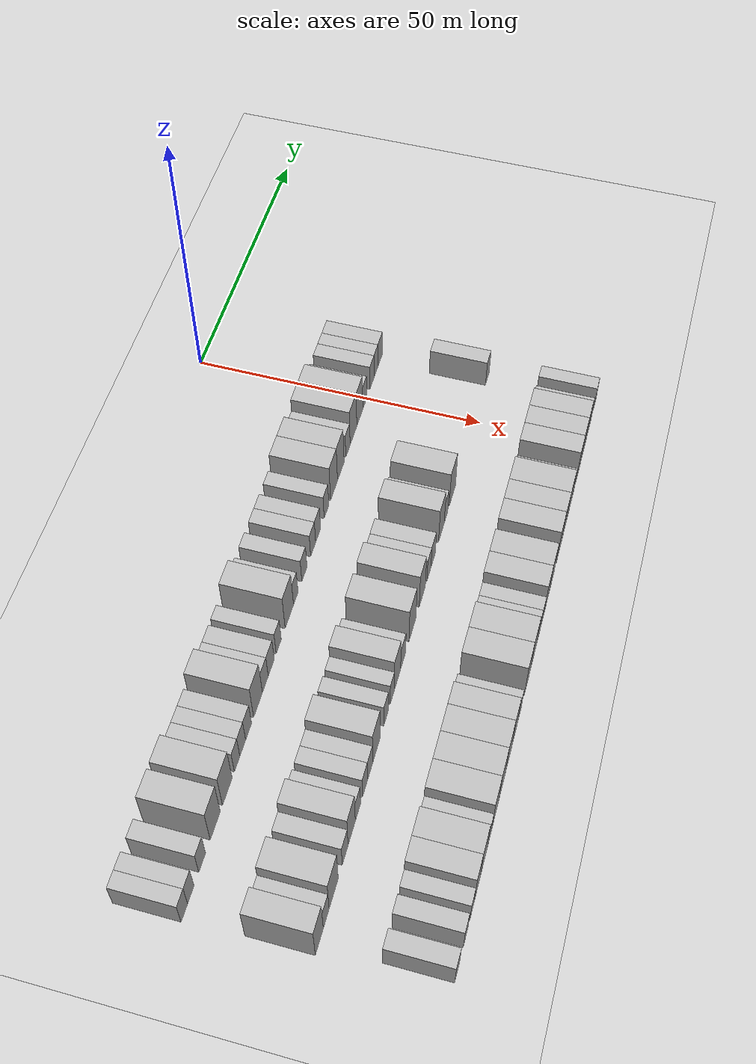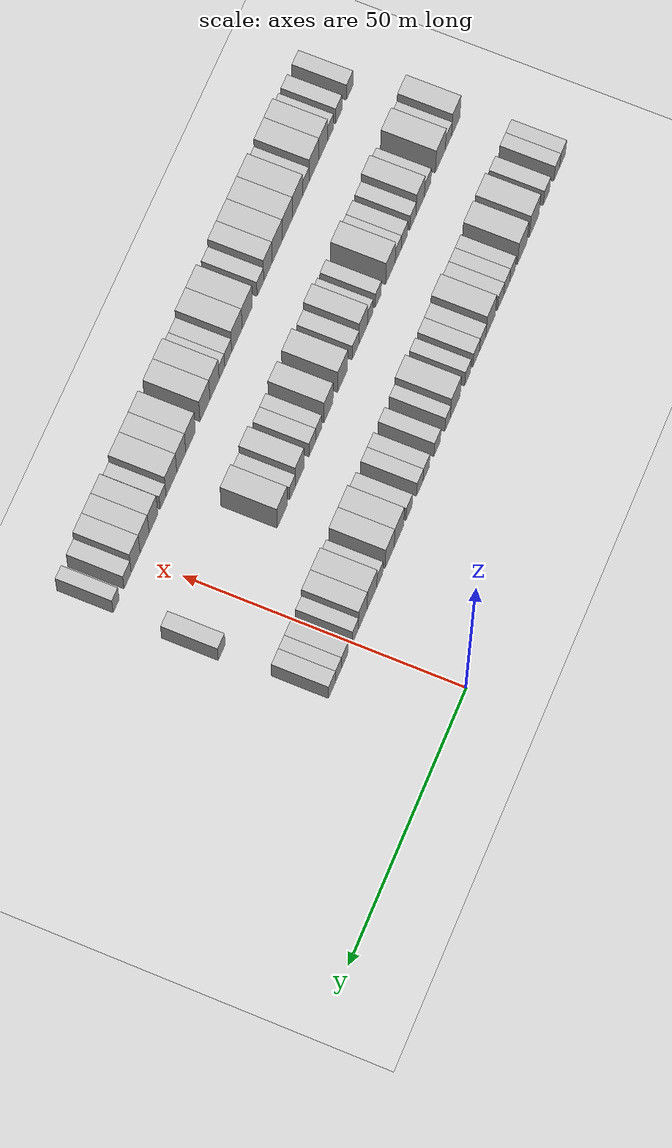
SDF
<sdf version="1.6">
 <world name="default">
  <include><name>ground_plane_1</name><uri>model://HANNAS_ground_plane</uri></include>
  <model name="building_63">
   <static>1</static>
   <pose>25.0000 -92.7019 0 0.000000 0.000000 0.000000</pose>
   <link name="link">
    <pose>0 0 3.00 0 0 0</pose>
    <collision name="collision"><geometry><box><size>10.0000 2.6333 6.0000</size></box></geometry></collision>
    <visual name="visual">
     <cast_shadows>0</cast_shadows>
     <geometry><box><size>10.0000 2.6333 6.0000</size></box></geometry>
     <material>
      <script>
       <uri>model://HANNAS_wall/materials/scripts</uri>
       <uri>model://HANNAS_wall/materials/textures</uri>
       <name>vrc/HANNAS_wall</name>
      </script>
     </material>
    </visual>
   </link>
  </model>
  <model name="building_64">
   <static>1</static>
   <pose>25.0000 -90.0661 0 0.000000 0.000000 0.000000</pose>
   <link name="link">
    <pose>0 0 3.00 0 0 0</pose>
    <collision name="collision"><geometry><box><size>10.0000 2.6383 6.0000</size></box></geometry></collision>
    <visual name="visual">
     <cast_shadows>0</cast_shadows>
     <geometry><box><size>10.0000 2.6383 6.0000</size></box></geometry>
     <material>
      <script>
       <uri>model://HANNAS_wall/materials/scripts</uri>
       <uri>model://HANNAS_wall/materials/textures</uri>
       <name>vrc/HANNAS_wall</name>
      </script>
     </material>
    </visual>
   </link>
  </model>
  <model name="building_65">
   <static>1</static>
   <pose>25.0000 -85.3199 0 0.000000 0.000000 0.000000</pose>
   <link name="link">
    <pose>0 0 3.00 0 0 0</pose>
    <collision name="collision"><geometry><box><size>10.0000 2.8541 6.0000</size></box></geometry></collision>
    <visual name="visual">
     <cast_shadows>0</cast_shadows>
     <geometry><box><size>10.0000 2.8541 6.0000</size></box></geometry>
     <material>
      <script>
       <uri>model://HANNAS_wall/materials/scripts</uri>
       <uri>model://HANNAS_wall/materials/textures</uri>
       <name>vrc/HANNAS_wall</name>
      </script>
     </material>
    </visual>
   </link>
  </model>
  <model name="building_66">
   <static>1</static>
   <pose>25.0000 -79.7140 0 0.000000 0.000000 0.000000</pose>
   <link name="link">
    <pose>0 0 4.50 0 0 0</pose>
    <collision name="collision"><geometry><box><size>10.0000 4.3578 9.0000</size></box></geometry></collision>
    <visual name="visual">
     <cast_shadows>0</cast_shadows>
     <geometry><box><size>10.0000 4.3578 9.0000</size></box></geometry>
     <material>
      <script>
       <uri>model://HANNAS_wall/materials/scripts</uri>
       <uri>model://HANNAS_wall/materials/textures</uri>
       <name>vrc/HANNAS_wall</name>
      </script>
     </material>
    </visual>
   </link>
  </model>
  <model name="building_67">
   <static>1</static>
   <pose>25.0000 -74.3770 0 0.000000 0.000000 0.000000</pose>
   <link name="link">
    <pose>0 0 4.50 0 0 0</pose>
    <collision name="collision"><geometry><box><size>10.0000 4.3161 9.0000</size></box></geometry></collision>
    <visual name="visual">
     <cast_shadows>0</cast_shadows>
     <geometry><box><size>10.0000 4.3161 9.0000</size></box></geometry>
     <material>
      <script>
       <uri>model://HANNAS_wall/materials/scripts</uri>
       <uri>model://HANNAS_wall/materials/textures</uri>
       <name>vrc/HANNAS_wall</name>
      </script>
     </material>
    </visual>
   </link>
  </model>
  <model name="building_68">
   <static>1</static>
   <pose>25.0000 -69.9639 0 0.000000 0.000000 0.000000</pose>
   <link name="link">
    <pose>0 0 3.00 0 0 0</pose>
    <collision name="collision"><geometry><box><size>10.0000 2.5100 6.0000</size></box></geometry></collision>
    <visual name="visual">
     <cast_shadows>0</cast_shadows>
     <geometry><box><size>10.0000 2.5100 6.0000</size></box></geometry>
     <material>
      <script>
       <uri>model://HANNAS_wall/materials/scripts</uri>
       <uri>model://HANNAS_wall/materials/textures</uri>
       <name>vrc/HANNAS_wall</name>
      </script>
     </material>
    </visual>
   </link>
  </model>
  <model name="building_69">
   <static>1</static>
   <pose>25.0000 -67.3625 0 0.000000 0.000000 0.000000</pose>
   <link name="link">
    <pose>0 0 3.00 0 0 0</pose>
    <collision name="collision"><geometry><box><size>10.0000 2.6928 6.0000</size></box></geometry></collision>
    <visual name="visual">
     <cast_shadows>0</cast_shadows>
     <geometry><box><size>10.0000 2.6928 6.0000</size></box></geometry>
     <material>
      <script>
       <uri>model://HANNAS_wall/materials/scripts</uri>
       <uri>model://HANNAS_wall/materials/textures</uri>
       <name>vrc/HANNAS_wall</name>
      </script>
     </material>
    </visual>
   </link>
  </model>
  <model name="building_70">
   <static>1</static>
   <pose>25.0000 -64.6298 0 0.000000 0.000000 0.000000</pose>
   <link name="link">
    <pose>0 0 3.00 0 0 0</pose>
    <collision name="collision"><geometry><box><size>10.0000 2.7727 6.0000</size></box></geometry></collision>
    <visual name="visual">
     <cast_shadows>0</cast_shadows>
     <geometry><box><size>10.0000 2.7727 6.0000</size></box></geometry>
     <material>
      <script>
       <uri>model://HANNAS_wall/materials/scripts</uri>
       <uri>model://HANNAS_wall/materials/textures</uri>
       <name>vrc/HANNAS_wall</name>
      </script>
     </material>
    </visual>
   </link>
  </model>
  <model name="building_71">
   <static>1</static>
   <pose>25.0000 -60.1350 0 0.000000 0.000000 0.000000</pose>
   <link name="link">
    <pose>0 0 4.50 0 0 0</pose>
    <collision name="collision"><geometry><box><size>10.0000 4.2170 9.0000</size></box></geometry></collision>
    <visual name="visual">
     <cast_shadows>0</cast_shadows>
     <geometry><box><size>10.0000 4.2170 9.0000</size></box></geometry>
     <material>
      <script>
       <uri>model://HANNAS_wall/materials/scripts</uri>
       <uri>model://HANNAS_wall/materials/textures</uri>
       <name>vrc/HANNAS_wall</name>
      </script>
     </material>
    </visual>
   </link>
  </model>
  <model name="building_72">
   <static>1</static>
   <pose>25.0000 -56.5960 0 0.000000 0.000000 0.000000</pose>
   <link name="link">
    <pose>0 0 3.00 0 0 0</pose>
    <collision name="collision"><geometry><box><size>10.0000 2.8609 6.0000</size></box></geometry></collision>
    <visual name="visual">
     <cast_shadows>0</cast_shadows>
     <geometry><box><size>10.0000 2.8609 6.0000</size></box></geometry>
     <material>
      <script>
       <uri>model://HANNAS_wall/materials/scripts</uri>
       <uri>model://HANNAS_wall/materials/textures</uri>
       <name>vrc/HANNAS_wall</name>
      </script>
     </material>
    </visual>
   </link>
  </model>
  <model name="building_73">
   <static>1</static>
   <pose>25.0000 -53.6867 0 0.000000 0.000000 0.000000</pose>
   <link name="link">
    <pose>0 0 3.00 0 0 0</pose>
    <collision name="collision"><geometry><box><size>10.0000 2.9577 6.0000</size></box></geometry></collision>
    <visual name="visual">
     <cast_shadows>0</cast_shadows>
     <geometry><box><size>10.0000 2.9577 6.0000</size></box></geometry>
     <material>
      <script>
       <uri>model://HANNAS_wall/materials/scripts</uri>
       <uri>model://HANNAS_wall/materials/textures</uri>
       <name>vrc/HANNAS_wall</name>
      </script>
     </material>
    </visual>
   </link>
  </model>
  <model name="building_74">
   <static>1</static>
   <pose>25.0000 -49.9229 0 0.000000 0.000000 0.000000</pose>
   <link name="link">
    <pose>0 0 3.00 0 0 0</pose>
    <collision name="collision"><geometry><box><size>10.0000 2.5699 6.0000</size></box></geometry></collision>
    <visual name="visual">
     <cast_shadows>0</cast_shadows>
     <geometry><box><size>10.0000 2.5699 6.0000</size></box></geometry>
     <material>
      <script>
       <uri>model://HANNAS_wall/materials/scripts</uri>
       <uri>model://HANNAS_wall/materials/textures</uri>
       <name>vrc/HANNAS_wall</name>
      </script>
     </material>
    </visual>
   </link>
  </model>
  <model name="building_75">
   <static>1</static>
   <pose>25.0000 -44.4682 0 0.000000 0.000000 0.000000</pose>
   <link name="link">
    <pose>0 0 4.50 0 0 0</pose>
    <collision name="collision"><geometry><box><size>10.0000 4.3394 9.0000</size></box></geometry></collision>
    <visual name="visual">
     <cast_shadows>0</cast_shadows>
     <geometry><box><size>10.0000 4.3394 9.0000</size></box></geometry>
     <material>
      <script>
       <uri>model://HANNAS_wall/materials/scripts</uri>
       <uri>model://HANNAS_wall/materials/textures</uri>
       <name>vrc/HANNAS_wall</name>
      </script>
     </material>
    </visual>
   </link>
  </model>
  <model name="building_76">
   <static>1</static>
   <pose>25.0000 -41.0983 0 0.000000 0.000000 0.000000</pose>
   <link name="link">
    <pose>0 0 3.00 0 0 0</pose>
    <collision name="collision"><geometry><box><size>10.0000 2.4003 6.0000</size></box></geometry></collision>
    <visual name="visual">
     <cast_shadows>0</cast_shadows>
     <geometry><box><size>10.0000 2.4003 6.0000</size></box></geometry>
     <material>
      <script>
       <uri>model://HANNAS_wall/materials/scripts</uri>
       <uri>model://HANNAS_wall/materials/textures</uri>
       <name>vrc/HANNAS_wall</name>
      </script>
     </material>
    </visual>
   </link>
  </model>
  <model name="building_77">
   <static>1</static>
   <pose>25.0000 -36.5025 0 0.000000 0.000000 0.000000</pose>
   <link name="link">
    <pose>0 0 3.00 0 0 0</pose>
    <collision name="collision"><geometry><box><size>10.0000 2.7914 6.0000</size></box></geometry></collision>
    <visual name="visual">
     <cast_shadows>0</cast_shadows>
     <geometry><box><size>10.0000 2.7914 6.0000</size></box></geometry>
     <material>
      <script>
       <uri>model://HANNAS_wall/materials/scripts</uri>
       <uri>model://HANNAS_wall/materials/textures</uri>
       <name>vrc/HANNAS_wall</name>
      </script>
     </material>
    </visual>
   </link>
  </model>
  <model name="building_78">
   <static>1</static>
   <pose>25.0000 -31.7241 0 0.000000 0.000000 0.000000</pose>
   <link name="link">
    <pose>0 0 3.00 0 0 0</pose>
    <collision name="collision"><geometry><box><size>10.0000 2.7655 6.0000</size></box></geometry></collision>
    <visual name="visual">
     <cast_shadows>0</cast_shadows>
     <geometry><box><size>10.0000 2.7655 6.0000</size></box></geometry>
     <material>
      <script>
       <uri>model://HANNAS_wall/materials/scripts</uri>
       <uri>model://HANNAS_wall/materials/textures</uri>
       <name>vrc/HANNAS_wall</name>
      </script>
     </material>
    </visual>
   </link>
  </model>
  <model name="building_79">
   <static>1</static>
   <pose>25.0000 -28.9590 0 0.000000 0.000000 0.000000</pose>
   <link name="link">
    <pose>0 0 3.00 0 0 0</pose>
    <collision name="collision"><geometry><box><size>10.0000 2.7646 6.0000</size></box></geometry></collision>
    <visual name="visual">
     <cast_shadows>0</cast_shadows>
     <geometry><box><size>10.0000 2.7646 6.0000</size></box></geometry>
     <material>
      <script>
       <uri>model://HANNAS_wall/materials/scripts</uri>
       <uri>model://HANNAS_wall/materials/textures</uri>
       <name>vrc/HANNAS_wall</name>
      </script>
     </material>
    </visual>
   </link>
  </model>
  <model name="building_80">
   <static>1</static>
   <pose>25.0000 -24.2439 0 0.000000 0.000000 0.000000</pose>
   <link name="link">
    <pose>0 0 3.00 0 0 0</pose>
    <collision name="collision"><geometry><box><size>10.0000 2.6656 6.0000</size></box></geometry></collision>
    <visual name="visual">
     <cast_shadows>0</cast_shadows>
     <geometry><box><size>10.0000 2.6656 6.0000</size></box></geometry>
     <material>
      <script>
       <uri>model://HANNAS_wall/materials/scripts</uri>
       <uri>model://HANNAS_wall/materials/textures</uri>
       <name>vrc/HANNAS_wall</name>
      </script>
     </material>
    </visual>
   </link>
  </model>
  <model name="building_81">
   <static>1</static>
   <pose>25.0000 -19.8770 0 0.000000 0.000000 0.000000</pose>
   <link name="link">
    <pose>0 0 4.50 0 0 0</pose>
    <collision name="collision"><geometry><box><size>10.0000 4.0682 9.0000</size></box></geometry></collision>
    <visual name="visual">
     <cast_shadows>0</cast_shadows>
     <geometry><box><size>10.0000 4.0682 9.0000</size></box></geometry>
     <material>
      <script>
       <uri>model://HANNAS_wall/materials/scripts</uri>
       <uri>model://HANNAS_wall/materials/textures</uri>
       <name>vrc/HANNAS_wall</name>
      </script>
     </material>
    </visual>
   </link>
  </model>
  <model name="building_82">
   <static>1</static>
   <pose>25.0000 -15.8844 0 0.000000 0.000000 0.000000</pose>
   <link name="link">
    <pose>0 0 4.50 0 0 0</pose>
    <collision name="collision"><geometry><box><size>10.0000 3.9169 9.0000</size></box></geometry></collision>
    <visual name="visual">
     <cast_shadows>0</cast_shadows>
     <geometry><box><size>10.0000 3.9169 9.0000</size></box></geometry>
     <material>
      <script>
       <uri>model://HANNAS_wall/materials/scripts</uri>
       <uri>model://HANNAS_wall/materials/textures</uri>
       <name>vrc/HANNAS_wall</name>
      </script>
     </material>
    </visual>
   </link>
  </model>
  <model name="building_83">
   <static>1</static>
   <pose>25.0000 -11.6111 0 0.000000 0.000000 0.000000</pose>
   <link name="link">
    <pose>0 0 3.00 0 0 0</pose>
    <collision name="collision"><geometry><box><size>10.0000 2.6296 6.0000</size></box></geometry></collision>
    <visual name="visual">
     <cast_shadows>0</cast_shadows>
     <geometry><box><size>10.0000 2.6296 6.0000</size></box></geometry>
     <material>
      <script>
       <uri>model://HANNAS_wall/materials/scripts</uri>
       <uri>model://HANNAS_wall/materials/textures</uri>
       <name>vrc/HANNAS_wall</name>
      </script>
     </material>
    </visual>
   </link>
  </model>
  <model name="building_84">
   <static>1</static>
   <pose>25.0000 -8.2443 0 0.000000 0.000000 0.000000</pose>
   <link name="link">
    <pose>0 0 4.50 0 0 0</pose>
    <collision name="collision"><geometry><box><size>10.0000 4.1041 9.0000</size></box></geometry></collision>
    <visual name="visual">
     <cast_shadows>0</cast_shadows>
     <geometry><box><size>10.0000 4.1041 9.0000</size></box></geometry>
     <material>
      <script>
       <uri>model://HANNAS_wall/materials/scripts</uri>
       <uri>model://HANNAS_wall/materials/textures</uri>
       <name>vrc/HANNAS_wall</name>
      </script>
     </material>
    </visual>
   </link>
  </model>
  <model name="building_85">
   <static>1</static>
   <pose>25.0000 -4.3340 0 0.000000 0.000000 0.000000</pose>
   <link name="link">
    <pose>0 0 4.50 0 0 0</pose>
    <collision name="collision"><geometry><box><size>10.0000 3.7165 9.0000</size></box></geometry></collision>
    <visual name="visual">
     <cast_shadows>0</cast_shadows>
     <geometry><box><size>10.0000 3.7165 9.0000</size></box></geometry>
     <material>
      <script>
       <uri>model://HANNAS_wall/materials/scripts</uri>
       <uri>model://HANNAS_wall/materials/textures</uri>
       <name>vrc/HANNAS_wall</name>
      </script>
     </material>
    </visual>
   </link>
  </model>
  <model name="building_86">
   <static>1</static>
   <pose>25.0000 -1.1992 0 0.000000 0.000000 0.000000</pose>
   <link name="link">
    <pose>0 0 3.00 0 0 0</pose>
    <collision name="collision"><geometry><box><size>10.0000 2.5531 6.0000</size></box></geometry></collision>
    <visual name="visual">
     <cast_shadows>0</cast_shadows>
     <geometry><box><size>10.0000 2.5531 6.0000</size></box></geometry>
     <material>
      <script>
       <uri>model://HANNAS_wall/materials/scripts</uri>
       <uri>model://HANNAS_wall/materials/textures</uri>
       <name>vrc/HANNAS_wall</name>
      </script>
     </material>
    </visual>
   </link>
  </model>
  <model name="building_87">
   <static>1</static>
   <pose>25.0000 3.4221 0 0.000000 0.000000 0.000000</pose>
   <link name="link">
    <pose>0 0 3.00 0 0 0</pose>
    <collision name="collision"><geometry><box><size>10.0000 2.6894 6.0000</size></box></geometry></collision>
    <visual name="visual">
     <cast_shadows>0</cast_shadows>
     <geometry><box><size>10.0000 2.6894 6.0000</size></box></geometry>
     <material>
      <script>
       <uri>model://HANNAS_wall/materials/scripts</uri>
       <uri>model://HANNAS_wall/materials/textures</uri>
       <name>vrc/HANNAS_wall</name>
      </script>
     </material>
    </visual>
   </link>
  </model>
  <model name="building_88">
   <static>1</static>
   <pose>25.0000 6.0088 0 0.000000 0.000000 0.000000</pose>
   <link name="link">
    <pose>0 0 3.00 0 0 0</pose>
    <collision name="collision"><geometry><box><size>10.0000 2.4841 6.0000</size></box></geometry></collision>
    <visual name="visual">
     <cast_shadows>0</cast_shadows>
     <geometry><box><size>10.0000 2.4841 6.0000</size></box></geometry>
     <material>
      <script>
       <uri>model://HANNAS_wall/materials/scripts</uri>
       <uri>model://HANNAS_wall/materials/textures</uri>
       <name>vrc/HANNAS_wall</name>
      </script>
     </material>
    </visual>
   </link>
  </model>
  <model name="building_89">
   <static>1</static>
   <pose>25.0000 8.7211 0 0.000000 0.000000 0.000000</pose>
   <link name="link">
    <pose>0 0 3.00 0 0 0</pose>
    <collision name="collision"><geometry><box><size>10.0000 2.9404 6.0000</size></box></geometry></collision>
    <visual name="visual">
     <cast_shadows>0</cast_shadows>
     <geometry><box><size>10.0000 2.9404 6.0000</size></box></geometry>
     <material>
      <script>
       <uri>model://HANNAS_wall/materials/scripts</uri>
       <uri>model://HANNAS_wall/materials/textures</uri>
       <name>vrc/HANNAS_wall</name>
      </script>
     </material>
    </visual>
   </link>
  </model>
  <model name="building_235">
   <static>1</static>
   <pose>44.0000 -91.6244 0 0.000000 0.000000 0.000000</pose>
   <link name="link">
    <pose>0 0 4.50 0 0 0</pose>
    <collision name="collision"><geometry><box><size>10.0000 3.7804 9.0000</size></box></geometry></collision>
    <visual name="visual">
     <cast_shadows>0</cast_shadows>
     <geometry><box><size>10.0000 3.7804 9.0000</size></box></geometry>
     <material>
      <script>
       <uri>model://HANNAS_wall/materials/scripts</uri>
       <uri>model://HANNAS_wall/materials/textures</uri>
       <name>vrc/HANNAS_wall</name>
      </script>
     </material>
    </visual>
   </link>
  </model>
  <model name="building_236">
   <static>1</static>
   <pose>44.0000 -88.3433 0 0.000000 0.000000 0.000000</pose>
   <link name="link">
    <pose>0 0 3.00 0 0 0</pose>
    <collision name="collision"><geometry><box><size>10.0000 2.7818 6.0000</size></box></geometry></collision>
    <visual name="visual">
     <cast_shadows>0</cast_shadows>
     <geometry><box><size>10.0000 2.7818 6.0000</size></box></geometry>
     <material>
      <script>
       <uri>model://HANNAS_wall/materials/scripts</uri>
       <uri>model://HANNAS_wall/materials/textures</uri>
       <name>vrc/HANNAS_wall</name>
      </script>
     </material>
    </visual>
   </link>
  </model>
  <model name="building_237">
   <static>1</static>
   <pose>44.0000 -84.7190 0 0.000000 0.000000 0.000000</pose>
   <link name="link">
    <pose>0 0 4.50 0 0 0</pose>
    <collision name="collision"><geometry><box><size>10.0000 4.4667 9.0000</size></box></geometry></collision>
    <visual name="visual">
     <cast_shadows>0</cast_shadows>
     <geometry><box><size>10.0000 4.4667 9.0000</size></box></geometry>
     <material>
      <script>
       <uri>model://HANNAS_wall/materials/scripts</uri>
       <uri>model://HANNAS_wall/materials/textures</uri>
       <name>vrc/HANNAS_wall</name>
      </script>
     </material>
    </visual>
   </link>
  </model>
  <model name="building_238">
   <static>1</static>
   <pose>44.0000 -79.0216 0 0.000000 0.000000 0.000000</pose>
   <link name="link">
    <pose>0 0 3.00 0 0 0</pose>
    <collision name="collision"><geometry><box><size>10.0000 2.9279 6.0000</size></box></geometry></collision>
    <visual name="visual">
     <cast_shadows>0</cast_shadows>
     <geometry><box><size>10.0000 2.9279 6.0000</size></box></geometry>
     <material>
      <script>
       <uri>model://HANNAS_wall/materials/scripts</uri>
       <uri>model://HANNAS_wall/materials/textures</uri>
       <name>vrc/HANNAS_wall</name>
      </script>
     </material>
    </visual>
   </link>
  </model>
  <model name="building_239">
   <static>1</static>
   <pose>44.0000 -75.6880 0 0.000000 0.000000 0.000000</pose>
   <link name="link">
    <pose>0 0 4.50 0 0 0</pose>
    <collision name="collision"><geometry><box><size>10.0000 3.7394 9.0000</size></box></geometry></collision>
    <visual name="visual">
     <cast_shadows>0</cast_shadows>
     <geometry><box><size>10.0000 3.7394 9.0000</size></box></geometry>
     <material>
      <script>
       <uri>model://HANNAS_wall/materials/scripts</uri>
       <uri>model://HANNAS_wall/materials/textures</uri>
       <name>vrc/HANNAS_wall</name>
      </script>
     </material>
    </visual>
   </link>
  </model>
  <model name="building_240">
   <static>1</static>
   <pose>44.0000 -72.4473 0 0.000000 0.000000 0.000000</pose>
   <link name="link">
    <pose>0 0 3.00 0 0 0</pose>
    <collision name="collision"><geometry><box><size>10.0000 2.7419 6.0000</size></box></geometry></collision>
    <visual name="visual">
     <cast_shadows>0</cast_shadows>
     <geometry><box><size>10.0000 2.7419 6.0000</size></box></geometry>
     <material>
      <script>
       <uri>model://HANNAS_wall/materials/scripts</uri>
       <uri>model://HANNAS_wall/materials/textures</uri>
       <name>vrc/HANNAS_wall</name>
      </script>
     </material>
    </visual>
   </link>
  </model>
  <model name="building_241">
   <static>1</static>
   <pose>44.0000 -68.6821 0 0.000000 0.000000 0.000000</pose>
   <link name="link">
    <pose>0 0 3.00 0 0 0</pose>
    <collision name="collision"><geometry><box><size>10.0000 2.7885 6.0000</size></box></geometry></collision>
    <visual name="visual">
     <cast_shadows>0</cast_shadows>
     <geometry><box><size>10.0000 2.7885 6.0000</size></box></geometry>
     <material>
      <script>
       <uri>model://HANNAS_wall/materials/scripts</uri>
       <uri>model://HANNAS_wall/materials/textures</uri>
       <name>vrc/HANNAS_wall</name>
      </script>
     </material>
    </visual>
   </link>
  </model>
  <model name="building_242">
   <static>1</static>
   <pose>44.0000 -65.9531 0 0.000000 0.000000 0.000000</pose>
   <link name="link">
    <pose>0 0 3.00 0 0 0</pose>
    <collision name="collision"><geometry><box><size>10.0000 2.6696 6.0000</size></box></geometry></collision>
    <visual name="visual">
     <cast_shadows>0</cast_shadows>
     <geometry><box><size>10.0000 2.6696 6.0000</size></box></geometry>
     <material>
      <script>
       <uri>model://HANNAS_wall/materials/scripts</uri>
       <uri>model://HANNAS_wall/materials/textures</uri>
       <name>vrc/HANNAS_wall</name>
      </script>
     </material>
    </visual>
   </link>
  </model>
  <model name="building_243">
   <static>1</static>
   <pose>44.0000 -62.5324 0 0.000000 0.000000 0.000000</pose>
   <link name="link">
    <pose>0 0 4.50 0 0 0</pose>
    <collision name="collision"><geometry><box><size>10.0000 4.1717 9.0000</size></box></geometry></collision>
    <visual name="visual">
     <cast_shadows>0</cast_shadows>
     <geometry><box><size>10.0000 4.1717 9.0000</size></box></geometry>
     <material>
      <script>
       <uri>model://HANNAS_wall/materials/scripts</uri>
       <uri>model://HANNAS_wall/materials/textures</uri>
       <name>vrc/HANNAS_wall</name>
      </script>
     </material>
    </visual>
   </link>
  </model>
  <model name="building_244">
   <static>1</static>
   <pose>44.0000 -57.1507 0 0.000000 0.000000 0.000000</pose>
   <link name="link">
    <pose>0 0 3.00 0 0 0</pose>
    <collision name="collision"><geometry><box><size>10.0000 2.5918 6.0000</size></box></geometry></collision>
    <visual name="visual">
     <cast_shadows>0</cast_shadows>
     <geometry><box><size>10.0000 2.5918 6.0000</size></box></geometry>
     <material>
      <script>
       <uri>model://HANNAS_wall/materials/scripts</uri>
       <uri>model://HANNAS_wall/materials/textures</uri>
       <name>vrc/HANNAS_wall</name>
      </script>
     </material>
    </visual>
   </link>
  </model>
  <model name="building_245">
   <static>1</static>
   <pose>44.0000 -53.6444 0 0.000000 0.000000 0.000000</pose>
   <link name="link">
    <pose>0 0 3.00 0 0 0</pose>
    <collision name="collision"><geometry><box><size>10.0000 2.4206 6.0000</size></box></geometry></collision>
    <visual name="visual">
     <cast_shadows>0</cast_shadows>
     <geometry><box><size>10.0000 2.4206 6.0000</size></box></geometry>
     <material>
      <script>
       <uri>model://HANNAS_wall/materials/scripts</uri>
       <uri>model://HANNAS_wall/materials/textures</uri>
       <name>vrc/HANNAS_wall</name>
      </script>
     </material>
    </visual>
   </link>
  </model>
  <model name="building_246">
   <static>1</static>
   <pose>44.0000 -50.5993 0 0.000000 0.000000 0.000000</pose>
   <link name="link">
    <pose>0 0 4.50 0 0 0</pose>
    <collision name="collision"><geometry><box><size>10.0000 3.6698 9.0000</size></box></geometry></collision>
    <visual name="visual">
     <cast_shadows>0</cast_shadows>
     <geometry><box><size>10.0000 3.6698 9.0000</size></box></geometry>
     <material>
      <script>
       <uri>model://HANNAS_wall/materials/scripts</uri>
       <uri>model://HANNAS_wall/materials/textures</uri>
       <name>vrc/HANNAS_wall</name>
      </script>
     </material>
    </visual>
   </link>
  </model>
  <model name="building_247">
   <static>1</static>
   <pose>44.0000 -47.2707 0 0.000000 0.000000 0.000000</pose>
   <link name="link">
    <pose>0 0 3.00 0 0 0</pose>
    <collision name="collision"><geometry><box><size>10.0000 2.9873 6.0000</size></box></geometry></collision>
    <visual name="visual">
     <cast_shadows>0</cast_shadows>
     <geometry><box><size>10.0000 2.9873 6.0000</size></box></geometry>
     <material>
      <script>
       <uri>model://HANNAS_wall/materials/scripts</uri>
       <uri>model://HANNAS_wall/materials/textures</uri>
       <name>vrc/HANNAS_wall</name>
      </script>
     </material>
    </visual>
   </link>
  </model>
  <model name="building_248">
   <static>1</static>
   <pose>44.0000 -41.6367 0 0.000000 0.000000 0.000000</pose>
   <link name="link">
    <pose>0 0 4.50 0 0 0</pose>
    <collision name="collision"><geometry><box><size>10.0000 4.2806 9.0000</size></box></geometry></collision>
    <visual name="visual">
     <cast_shadows>0</cast_shadows>
     <geometry><box><size>10.0000 4.2806 9.0000</size></box></geometry>
     <material>
      <script>
       <uri>model://HANNAS_wall/materials/scripts</uri>
       <uri>model://HANNAS_wall/materials/textures</uri>
       <name>vrc/HANNAS_wall</name>
      </script>
     </material>
    </visual>
   </link>
  </model>
  <model name="building_249">
   <static>1</static>
   <pose>44.0000 -35.5731 0 0.000000 0.000000 0.000000</pose>
   <link name="link">
    <pose>0 0 4.50 0 0 0</pose>
    <collision name="collision"><geometry><box><size>10.0000 3.8466 9.0000</size></box></geometry></collision>
    <visual name="visual">
     <cast_shadows>0</cast_shadows>
     <geometry><box><size>10.0000 3.8466 9.0000</size></box></geometry>
     <material>
      <script>
       <uri>model://HANNAS_wall/materials/scripts</uri>
       <uri>model://HANNAS_wall/materials/textures</uri>
       <name>vrc/HANNAS_wall</name>
      </script>
     </material>
    </visual>
   </link>
  </model>
  <model name="building_250">
   <static>1</static>
   <pose>44.0000 -31.3659 0 0.000000 0.000000 0.000000</pose>
   <link name="link">
    <pose>0 0 3.00 0 0 0</pose>
    <collision name="collision"><geometry><box><size>10.0000 2.5678 6.0000</size></box></geometry></collision>
    <visual name="visual">
     <cast_shadows>0</cast_shadows>
     <geometry><box><size>10.0000 2.5678 6.0000</size></box></geometry>
     <material>
      <script>
       <uri>model://HANNAS_wall/materials/scripts</uri>
       <uri>model://HANNAS_wall/materials/textures</uri>
       <name>vrc/HANNAS_wall</name>
      </script>
     </material>
    </visual>
   </link>
  </model>
  <model name="building_251">
   <static>1</static>
   <pose>44.0000 -28.6112 0 0.000000 0.000000 0.000000</pose>
   <link name="link">
    <pose>0 0 3.00 0 0 0</pose>
    <collision name="collision"><geometry><box><size>10.0000 2.9415 6.0000</size></box></geometry></collision>
    <visual name="visual">
     <cast_shadows>0</cast_shadows>
     <geometry><box><size>10.0000 2.9415 6.0000</size></box></geometry>
     <material>
      <script>
       <uri>model://HANNAS_wall/materials/scripts</uri>
       <uri>model://HANNAS_wall/materials/textures</uri>
       <name>vrc/HANNAS_wall</name>
      </script>
     </material>
    </visual>
   </link>
  </model>
  <model name="building_252">
   <static>1</static>
   <pose>44.0000 -23.2487 0 0.000000 0.000000 0.000000</pose>
   <link name="link">
    <pose>0 0 4.50 0 0 0</pose>
    <collision name="collision"><geometry><box><size>10.0000 3.7835 9.0000</size></box></geometry></collision>
    <visual name="visual">
     <cast_shadows>0</cast_shadows>
     <geometry><box><size>10.0000 3.7835 9.0000</size></box></geometry>
     <material>
      <script>
       <uri>model://HANNAS_wall/materials/scripts</uri>
       <uri>model://HANNAS_wall/materials/textures</uri>
       <name>vrc/HANNAS_wall</name>
      </script>
     </material>
    </visual>
   </link>
  </model>
  <model name="building_253">
   <static>1</static>
   <pose>44.0000 -20.1363 0 0.000000 0.000000 0.000000</pose>
   <link name="link">
    <pose>0 0 3.00 0 0 0</pose>
    <collision name="collision"><geometry><box><size>10.0000 2.4414 6.0000</size></box></geometry></collision>
    <visual name="visual">
     <cast_shadows>0</cast_shadows>
     <geometry><box><size>10.0000 2.4414 6.0000</size></box></geometry>
     <material>
      <script>
       <uri>model://HANNAS_wall/materials/scripts</uri>
       <uri>model://HANNAS_wall/materials/textures</uri>
       <name>vrc/HANNAS_wall</name>
      </script>
     </material>
    </visual>
   </link>
  </model>
  <model name="building_254">
   <static>1</static>
   <pose>44.0000 -15.7629 0 0.000000 0.000000 0.000000</pose>
   <link name="link">
    <pose>0 0 4.50 0 0 0</pose>
    <collision name="collision"><geometry><box><size>10.0000 4.3054 9.0000</size></box></geometry></collision>
    <visual name="visual">
     <cast_shadows>0</cast_shadows>
     <geometry><box><size>10.0000 4.3054 9.0000</size></box></geometry>
     <material>
      <script>
       <uri>model://HANNAS_wall/materials/scripts</uri>
       <uri>model://HANNAS_wall/materials/textures</uri>
       <name>vrc/HANNAS_wall</name>
      </script>
     </material>
    </visual>
   </link>
  </model>
  <model name="building_255">
   <static>1</static>
   <pose>44.0000 9.6743 0 0.000000 0.000000 0.000000</pose>
   <link name="link">
    <pose>0 0 3.00 0 0 0</pose>
    <collision name="collision"><geometry><box><size>10.0000 2.8563 6.0000</size></box></geometry></collision>
    <visual name="visual">
     <cast_shadows>0</cast_shadows>
     <geometry><box><size>10.0000 2.8563 6.0000</size></box></geometry>
     <material>
      <script>
       <uri>model://HANNAS_wall/materials/scripts</uri>
       <uri>model://HANNAS_wall/materials/textures</uri>
       <name>vrc/HANNAS_wall</name>
      </script>
     </material>
    </visual>
   </link>
  </model>
  <model name="building_406">
   <static>1</static>
   <pose>63.0000 -90.6383 0 0.000000 0.000000 0.000000</pose>
   <link name="link">
    <pose>0 0 3.00 0 0 0</pose>
    <collision name="collision"><geometry><box><size>10.0000 2.8955 6.0000</size></box></geometry></collision>
    <visual name="visual">
     <cast_shadows>0</cast_shadows>
     <geometry><box><size>10.0000 2.8955 6.0000</size></box></geometry>
     <material>
      <script>
       <uri>model://HANNAS_wall/materials/scripts</uri>
       <uri>model://HANNAS_wall/materials/textures</uri>
       <name>vrc/HANNAS_wall</name>
      </script>
     </material>
    </visual>
   </link>
  </model>
  <model name="building_407">
   <static>1</static>
   <pose>63.0000 -85.8061 0 0.000000 0.000000 0.000000</pose>
   <link name="link">
    <pose>0 0 3.00 0 0 0</pose>
    <collision name="collision"><geometry><box><size>10.0000 2.7689 6.0000</size></box></geometry></collision>
    <visual name="visual">
     <cast_shadows>0</cast_shadows>
     <geometry><box><size>10.0000 2.7689 6.0000</size></box></geometry>
     <material>
      <script>
       <uri>model://HANNAS_wall/materials/scripts</uri>
       <uri>model://HANNAS_wall/materials/textures</uri>
       <name>vrc/HANNAS_wall</name>
      </script>
     </material>
    </visual>
   </link>
  </model>
  <model name="building_408">
   <static>1</static>
   <pose>63.0000 -82.1418 0 0.000000 0.000000 0.000000</pose>
   <link name="link">
    <pose>0 0 3.00 0 0 0</pose>
    <collision name="collision"><geometry><box><size>10.0000 2.5599 6.0000</size></box></geometry></collision>
    <visual name="visual">
     <cast_shadows>0</cast_shadows>
     <geometry><box><size>10.0000 2.5599 6.0000</size></box></geometry>
     <material>
      <script>
       <uri>model://HANNAS_wall/materials/scripts</uri>
       <uri>model://HANNAS_wall/materials/textures</uri>
       <name>vrc/HANNAS_wall</name>
      </script>
     </material>
    </visual>
   </link>
  </model>
  <model name="building_409">
   <static>1</static>
   <pose>63.0000 -78.9904 0 0.000000 0.000000 0.000000</pose>
   <link name="link">
    <pose>0 0 4.50 0 0 0</pose>
    <collision name="collision"><geometry><box><size>10.0000 3.7428 9.0000</size></box></geometry></collision>
    <visual name="visual">
     <cast_shadows>0</cast_shadows>
     <geometry><box><size>10.0000 3.7428 9.0000</size></box></geometry>
     <material>
      <script>
       <uri>model://HANNAS_wall/materials/scripts</uri>
       <uri>model://HANNAS_wall/materials/textures</uri>
       <name>vrc/HANNAS_wall</name>
      </script>
     </material>
    </visual>
   </link>
  </model>
  <model name="building_410">
   <static>1</static>
   <pose>63.0000 -74.9562 0 0.000000 0.000000 0.000000</pose>
   <link name="link">
    <pose>0 0 4.50 0 0 0</pose>
    <collision name="collision"><geometry><box><size>10.0000 4.3256 9.0000</size></box></geometry></collision>
    <visual name="visual">
     <cast_shadows>0</cast_shadows>
     <geometry><box><size>10.0000 4.3256 9.0000</size></box></geometry>
     <material>
      <script>
       <uri>model://HANNAS_wall/materials/scripts</uri>
       <uri>model://HANNAS_wall/materials/textures</uri>
       <name>vrc/HANNAS_wall</name>
      </script>
     </material>
    </visual>
   </link>
  </model>
  <model name="building_411">
   <static>1</static>
   <pose>63.0000 -71.3717 0 0.000000 0.000000 0.000000</pose>
   <link name="link">
    <pose>0 0 3.00 0 0 0</pose>
    <collision name="collision"><geometry><box><size>10.0000 2.8434 6.0000</size></box></geometry></collision>
    <visual name="visual">
     <cast_shadows>0</cast_shadows>
     <geometry><box><size>10.0000 2.8434 6.0000</size></box></geometry>
     <material>
      <script>
       <uri>model://HANNAS_wall/materials/scripts</uri>
       <uri>model://HANNAS_wall/materials/textures</uri>
       <name>vrc/HANNAS_wall</name>
      </script>
     </material>
    </visual>
   </link>
  </model>
  <model name="building_412">
   <static>1</static>
   <pose>63.0000 -67.7100 0 0.000000 0.000000 0.000000</pose>
   <link name="link">
    <pose>0 0 4.50 0 0 0</pose>
    <collision name="collision"><geometry><box><size>10.0000 4.4800 9.0000</size></box></geometry></collision>
    <visual name="visual">
     <cast_shadows>0</cast_shadows>
     <geometry><box><size>10.0000 4.4800 9.0000</size></box></geometry>
     <material>
      <script>
       <uri>model://HANNAS_wall/materials/scripts</uri>
       <uri>model://HANNAS_wall/materials/textures</uri>
       <name>vrc/HANNAS_wall</name>
      </script>
     </material>
    </visual>
   </link>
  </model>
  <model name="building_413">
   <static>1</static>
   <pose>63.0000 -63.2791 0 0.000000 0.000000 0.000000</pose>
   <link name="link">
    <pose>0 0 4.50 0 0 0</pose>
    <collision name="collision"><geometry><box><size>10.0000 4.3820 9.0000</size></box></geometry></collision>
    <visual name="visual">
     <cast_shadows>0</cast_shadows>
     <geometry><box><size>10.0000 4.3820 9.0000</size></box></geometry>
     <material>
      <script>
       <uri>model://HANNAS_wall/materials/scripts</uri>
       <uri>model://HANNAS_wall/materials/textures</uri>
       <name>vrc/HANNAS_wall</name>
      </script>
     </material>
    </visual>
   </link>
  </model>
  <model name="building_414">
   <static>1</static>
   <pose>63.0000 -58.9188 0 0.000000 0.000000 0.000000</pose>
   <link name="link">
    <pose>0 0 4.50 0 0 0</pose>
    <collision name="collision"><geometry><box><size>10.0000 4.3386 9.0000</size></box></geometry></collision>
    <visual name="visual">
     <cast_shadows>0</cast_shadows>
     <geometry><box><size>10.0000 4.3386 9.0000</size></box></geometry>
     <material>
      <script>
       <uri>model://HANNAS_wall/materials/scripts</uri>
       <uri>model://HANNAS_wall/materials/textures</uri>
       <name>vrc/HANNAS_wall</name>
      </script>
     </material>
    </visual>
   </link>
  </model>
  <model name="building_415">
   <static>1</static>
   <pose>63.0000 -54.9156 0 0.000000 0.000000 0.000000</pose>
   <link name="link">
    <pose>0 0 4.50 0 0 0</pose>
    <collision name="collision"><geometry><box><size>10.0000 3.6679 9.0000</size></box></geometry></collision>
    <visual name="visual">
     <cast_shadows>0</cast_shadows>
     <geometry><box><size>10.0000 3.6679 9.0000</size></box></geometry>
     <material>
      <script>
       <uri>model://HANNAS_wall/materials/scripts</uri>
       <uri>model://HANNAS_wall/materials/textures</uri>
       <name>vrc/HANNAS_wall</name>
      </script>
     </material>
    </visual>
   </link>
  </model>
  <model name="building_416">
   <static>1</static>
   <pose>63.0000 -51.6492 0 0.000000 0.000000 0.000000</pose>
   <link name="link">
    <pose>0 0 3.00 0 0 0</pose>
    <collision name="collision"><geometry><box><size>10.0000 2.8648 6.0000</size></box></geometry></collision>
    <visual name="visual">
     <cast_shadows>0</cast_shadows>
     <geometry><box><size>10.0000 2.8648 6.0000</size></box></geometry>
     <material>
      <script>
       <uri>model://HANNAS_wall/materials/scripts</uri>
       <uri>model://HANNAS_wall/materials/textures</uri>
       <name>vrc/HANNAS_wall</name>
      </script>
     </material>
    </visual>
   </link>
  </model>
  <model name="building_417">
   <static>1</static>
   <pose>63.0000 -45.9979 0 0.000000 0.000000 0.000000</pose>
   <link name="link">
    <pose>0 0 4.50 0 0 0</pose>
    <collision name="collision"><geometry><box><size>10.0000 4.4377 9.0000</size></box></geometry></collision>
    <visual name="visual">
     <cast_shadows>0</cast_shadows>
     <geometry><box><size>10.0000 4.4377 9.0000</size></box></geometry>
     <material>
      <script>
       <uri>model://HANNAS_wall/materials/scripts</uri>
       <uri>model://HANNAS_wall/materials/textures</uri>
       <name>vrc/HANNAS_wall</name>
      </script>
     </material>
    </visual>
   </link>
  </model>
  <model name="building_418">
   <static>1</static>
   <pose>63.0000 -41.5515 0 0.000000 0.000000 0.000000</pose>
   <link name="link">
    <pose>0 0 4.50 0 0 0</pose>
    <collision name="collision"><geometry><box><size>10.0000 4.4552 9.0000</size></box></geometry></collision>
    <visual name="visual">
     <cast_shadows>0</cast_shadows>
     <geometry><box><size>10.0000 4.4552 9.0000</size></box></geometry>
     <material>
      <script>
       <uri>model://HANNAS_wall/materials/scripts</uri>
       <uri>model://HANNAS_wall/materials/textures</uri>
       <name>vrc/HANNAS_wall</name>
      </script>
     </material>
    </visual>
   </link>
  </model>
  <model name="building_419">
   <static>1</static>
   <pose>63.0000 -37.8592 0 0.000000 0.000000 0.000000</pose>
   <link name="link">
    <pose>0 0 3.00 0 0 0</pose>
    <collision name="collision"><geometry><box><size>10.0000 2.9294 6.0000</size></box></geometry></collision>
    <visual name="visual">
     <cast_shadows>0</cast_shadows>
     <geometry><box><size>10.0000 2.9294 6.0000</size></box></geometry>
     <material>
      <script>
       <uri>model://HANNAS_wall/materials/scripts</uri>
       <uri>model://HANNAS_wall/materials/textures</uri>
       <name>vrc/HANNAS_wall</name>
      </script>
     </material>
    </visual>
   </link>
  </model>
  <model name="building_420">
   <static>1</static>
   <pose>63.0000 -35.1920 0 0.000000 0.000000 0.000000</pose>
   <link name="link">
    <pose>0 0 3.00 0 0 0</pose>
    <collision name="collision"><geometry><box><size>10.0000 2.4049 6.0000</size></box></geometry></collision>
    <visual name="visual">
     <cast_shadows>0</cast_shadows>
     <geometry><box><size>10.0000 2.4049 6.0000</size></box></geometry>
     <material>
      <script>
       <uri>model://HANNAS_wall/materials/scripts</uri>
       <uri>model://HANNAS_wall/materials/textures</uri>
       <name>vrc/HANNAS_wall</name>
      </script>
     </material>
    </visual>
   </link>
  </model>
  <model name="building_421">
   <static>1</static>
   <pose>63.0000 -32.0356 0 0.000000 0.000000 0.000000</pose>
   <link name="link">
    <pose>0 0 4.50 0 0 0</pose>
    <collision name="collision"><geometry><box><size>10.0000 3.9080 9.0000</size></box></geometry></collision>
    <visual name="visual">
     <cast_shadows>0</cast_shadows>
     <geometry><box><size>10.0000 3.9080 9.0000</size></box></geometry>
     <material>
      <script>
       <uri>model://HANNAS_wall/materials/scripts</uri>
       <uri>model://HANNAS_wall/materials/textures</uri>
       <name>vrc/HANNAS_wall</name>
      </script>
     </material>
    </visual>
   </link>
  </model>
  <model name="building_422">
   <static>1</static>
   <pose>63.0000 -28.0102 0 0.000000 0.000000 0.000000</pose>
   <link name="link">
    <pose>0 0 4.50 0 0 0</pose>
    <collision name="collision"><geometry><box><size>10.0000 4.1428 9.0000</size></box></geometry></collision>
    <visual name="visual">
     <cast_shadows>0</cast_shadows>
     <geometry><box><size>10.0000 4.1428 9.0000</size></box></geometry>
     <material>
      <script>
       <uri>model://HANNAS_wall/materials/scripts</uri>
       <uri>model://HANNAS_wall/materials/textures</uri>
       <name>vrc/HANNAS_wall</name>
      </script>
     </material>
    </visual>
   </link>
  </model>
  <model name="building_423">
   <static>1</static>
   <pose>63.0000 -21.9392 0 0.000000 0.000000 0.000000</pose>
   <link name="link">
    <pose>0 0 4.50 0 0 0</pose>
    <collision name="collision"><geometry><box><size>10.0000 3.9992 9.0000</size></box></geometry></collision>
    <visual name="visual">
     <cast_shadows>0</cast_shadows>
     <geometry><box><size>10.0000 3.9992 9.0000</size></box></geometry>
     <material>
      <script>
       <uri>model://HANNAS_wall/materials/scripts</uri>
       <uri>model://HANNAS_wall/materials/textures</uri>
       <name>vrc/HANNAS_wall</name>
      </script>
     </material>
    </visual>
   </link>
  </model>
  <model name="building_424">
   <static>1</static>
   <pose>63.0000 -18.0505 0 0.000000 0.000000 0.000000</pose>
   <link name="link">
    <pose>0 0 4.50 0 0 0</pose>
    <collision name="collision"><geometry><box><size>10.0000 3.7780 9.0000</size></box></geometry></collision>
    <visual name="visual">
     <cast_shadows>0</cast_shadows>
     <geometry><box><size>10.0000 3.7780 9.0000</size></box></geometry>
     <material>
      <script>
       <uri>model://HANNAS_wall/materials/scripts</uri>
       <uri>model://HANNAS_wall/materials/textures</uri>
       <name>vrc/HANNAS_wall</name>
      </script>
     </material>
    </visual>
   </link>
  </model>
  <model name="building_425">
   <static>1</static>
   <pose>63.0000 -13.9244 0 0.000000 0.000000 0.000000</pose>
   <link name="link">
    <pose>0 0 4.50 0 0 0</pose>
    <collision name="collision"><geometry><box><size>10.0000 4.4743 9.0000</size></box></geometry></collision>
    <visual name="visual">
     <cast_shadows>0</cast_shadows>
     <geometry><box><size>10.0000 4.4743 9.0000</size></box></geometry>
     <material>
      <script>
       <uri>model://HANNAS_wall/materials/scripts</uri>
       <uri>model://HANNAS_wall/materials/textures</uri>
       <name>vrc/HANNAS_wall</name>
      </script>
     </material>
    </visual>
   </link>
  </model>
  <model name="building_426">
   <static>1</static>
   <pose>63.0000 -10.4637 0 0.000000 0.000000 0.000000</pose>
   <link name="link">
    <pose>0 0 3.00 0 0 0</pose>
    <collision name="collision"><geometry><box><size>10.0000 2.4470 6.0000</size></box></geometry></collision>
    <visual name="visual">
     <cast_shadows>0</cast_shadows>
     <geometry><box><size>10.0000 2.4470 6.0000</size></box></geometry>
     <material>
      <script>
       <uri>model://HANNAS_wall/materials/scripts</uri>
       <uri>model://HANNAS_wall/materials/textures</uri>
       <name>vrc/HANNAS_wall</name>
      </script>
     </material>
    </visual>
   </link>
  </model>
  <model name="building_427">
   <static>1</static>
   <pose>63.0000 -6.4299 0 0.000000 0.000000 0.000000</pose>
   <link name="link">
    <pose>0 0 4.50 0 0 0</pose>
    <collision name="collision"><geometry><box><size>10.0000 3.6206 9.0000</size></box></geometry></collision>
    <visual name="visual">
     <cast_shadows>0</cast_shadows>
     <geometry><box><size>10.0000 3.6206 9.0000</size></box></geometry>
     <material>
      <script>
       <uri>model://HANNAS_wall/materials/scripts</uri>
       <uri>model://HANNAS_wall/materials/textures</uri>
       <name>vrc/HANNAS_wall</name>
      </script>
     </material>
    </visual>
   </link>
  </model>
  <model name="building_428">
   <static>1</static>
   <pose>63.0000 -2.7612 0 0.000000 0.000000 0.000000</pose>
   <link name="link">
    <pose>0 0 4.50 0 0 0</pose>
    <collision name="collision"><geometry><box><size>10.0000 3.7168 9.0000</size></box></geometry></collision>
    <visual name="visual">
     <cast_shadows>0</cast_shadows>
     <geometry><box><size>10.0000 3.7168 9.0000</size></box></geometry>
     <material>
      <script>
       <uri>model://HANNAS_wall/materials/scripts</uri>
       <uri>model://HANNAS_wall/materials/textures</uri>
       <name>vrc/HANNAS_wall</name>
      </script>
     </material>
    </visual>
   </link>
  </model>
  <model name="building_429">
   <static>1</static>
   <pose>63.0000 0.9177 0 0.000000 0.000000 0.000000</pose>
   <link name="link">
    <pose>0 0 4.50 0 0 0</pose>
    <collision name="collision"><geometry><box><size>10.0000 3.6410 9.0000</size></box></geometry></collision>
    <visual name="visual">
     <cast_shadows>0</cast_shadows>
     <geometry><box><size>10.0000 3.6410 9.0000</size></box></geometry>
     <material>
      <script>
       <uri>model://HANNAS_wall/materials/scripts</uri>
       <uri>model://HANNAS_wall/materials/textures</uri>
       <name>vrc/HANNAS_wall</name>
      </script>
     </material>
    </visual>
   </link>
  </model>
  <model name="building_430">
   <static>1</static>
   <pose>63.0000 4.2230 0 0.000000 0.000000 0.000000</pose>
   <link name="link">
    <pose>0 0 3.00 0 0 0</pose>
    <collision name="collision"><geometry><box><size>10.0000 2.9698 6.0000</size></box></geometry></collision>
    <visual name="visual">
     <cast_shadows>0</cast_shadows>
     <geometry><box><size>10.0000 2.9698 6.0000</size></box></geometry>
     <material>
      <script>
       <uri>model://HANNAS_wall/materials/scripts</uri>
       <uri>model://HANNAS_wall/materials/textures</uri>
       <name>vrc/HANNAS_wall</name>
      </script>
     </material>
    </visual>
   </link>
  </model>
  <model name="building_431">
   <static>1</static>
   <pose>63.0000 8.9356 0 0.000000 0.000000 0.000000</pose>
   <link name="link">
    <pose>0 0 3.00 0 0 0</pose>
    <collision name="collision"><geometry><box><size>10.0000 2.4553 6.0000</size></box></geometry></collision>
    <visual name="visual">
     <cast_shadows>0</cast_shadows>
     <geometry><box><size>10.0000 2.4553 6.0000</size></box></geometry>
     <material>
      <script>
       <uri>model://HANNAS_wall/materials/scripts</uri>
       <uri>model://HANNAS_wall/materials/textures</uri>
       <name>vrc/HANNAS_wall</name>
      </script>
     </material>
    </visual>
   </link>
  </model>
 </world>
</sdf>
